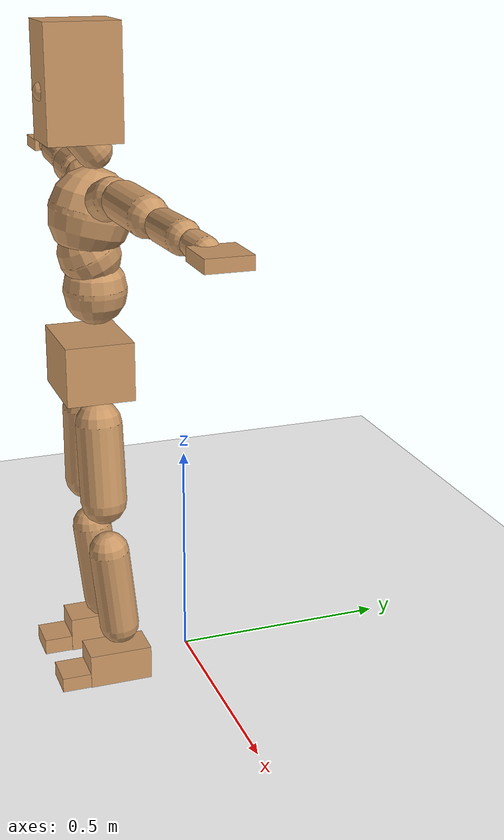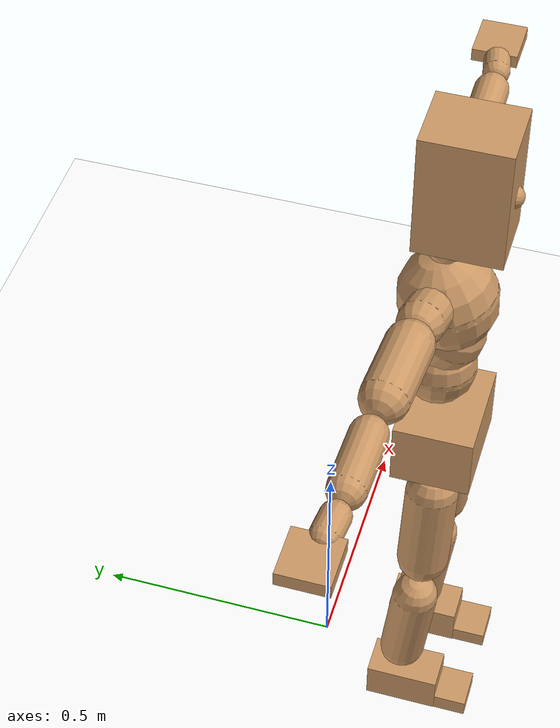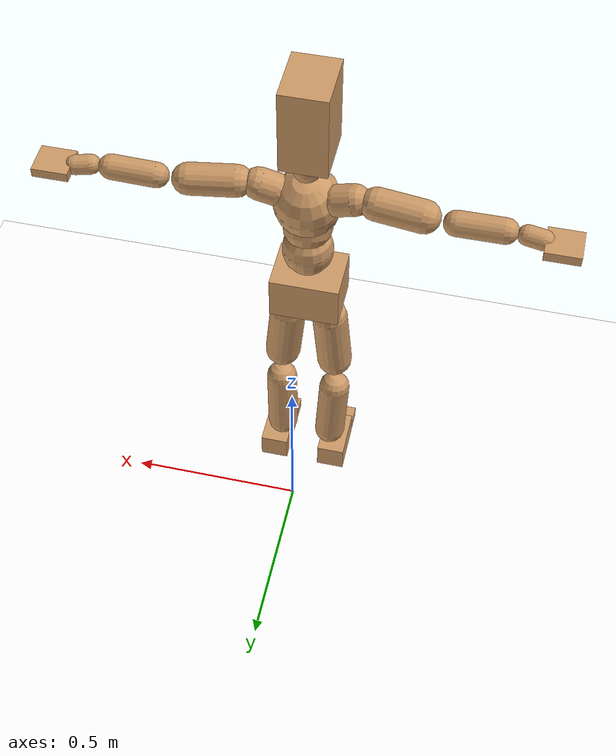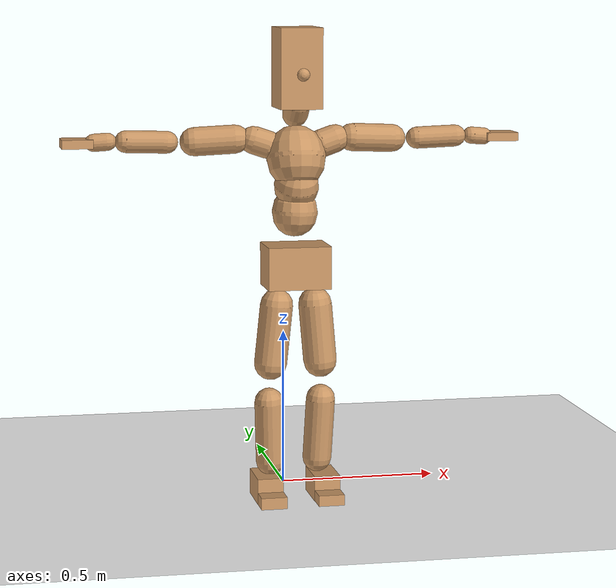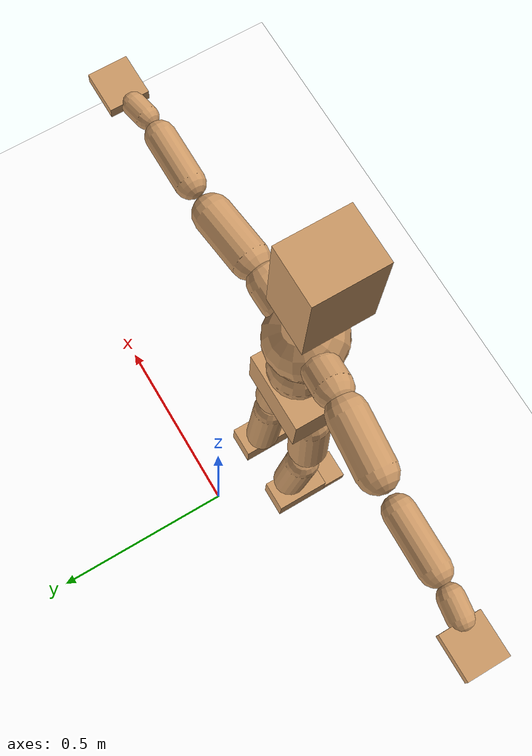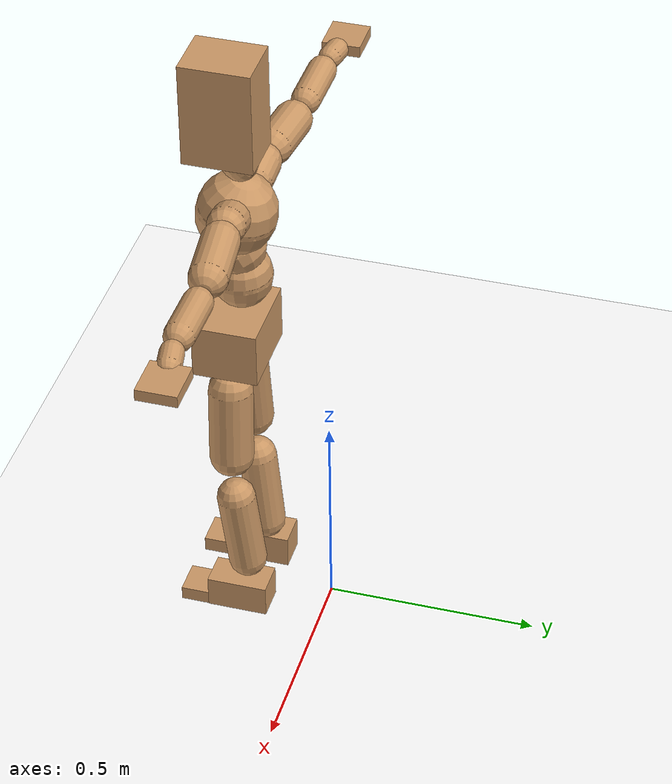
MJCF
<mujoco model="humanoid">
  <option integrator="implicitfast" />

  <visual>
    <global offwidth="1280" offheight="960" />
    <headlight active="1" ambient="0.34 0.34 0.34" diffuse="0.5 0.5 0.5" />
  </visual>

  <default>
    <joint damping="2" stiffness="2" armature="0.01" limited="true" solimplimit="0 .99 .01" />
    <geom condim="1" friction="0.7 0.005 0.0001" solimp=".99 .99 .003" solref="0.015 1" margin="0.001" rgba="0.8 0.6 .4 1" />
    <default class="smplcontact">
      <geom condim="3" friction="1. 0.005 0.0001" solref="0.015 1" solimp="0.98 0.98 0.001" priority="1" />
    </default>
    <default class="stiff_medium">
      <joint stiffness="10" />
    </default>
    <default class="stiff_medium_higher">
      <joint stiffness="50" />
    </default>
    <default class="stiff_high">
      <joint stiffness="100" />
    </default>
  </default>

  <asset>
    <texture type="skybox" builtin="gradient" rgb1="0.99 0.99 0.99" rgb2="0.608 0.828 0.892" width="100" />
    <texture builtin="flat" height="1278" mark="cross" markrgb="1 1 1" name="texgeom" random="0.01" rgb1="0.8 0.6 0.4" rgb2="0.8 0.6 0.4" type="cube" width="127" />
    <texture name="texplane" type="2d" builtin="checker" markrgb="1 1 1" rgb1="0.756 0.772 0.76" rgb2="0.6 0.6 0.6" width="100" height="100" />
    <material name="MatPlane" reflectance="0.5" texture="texplane" texrepeat="1 1" texuniform="true" />
    <material name="geom" texture="texgeom" texuniform="true" />
  </asset>

  <worldbody>
    <light name="tracking_light" pos="0 0 7" dir="0 0 -1" directional="true" cutoff="100" exponent="1" diffuse="1 1 1" specular="0.1 0.1 0.1" mode="trackcom" />
    <camera name="back" pos="0 3 2.4" xyaxes="-1 0 0 0 -1 2" mode="trackcom" />
    <camera name="side" pos="-3 0 2.4" xyaxes="0 -1 0 1 0 2" mode="trackcom" />
    <camera name="front_side" pos="-2.8 -2.8 0.8" xyaxes="0.5 -0.5 0 0.1 0.1 1" mode="trackcom" />
    <geom condim="3" name="floor" pos="0 0 0" rgba="1 1 1 1" size="100 100 .2" type="plane" material="MatPlane" />
    <body name="Pelvis" pos="-0.0018 -0.2233 0.760639" euler="90 0 0">
      <site name="Pelvis" size="0.01" />
      <freejoint name="Pelvis" />
      <geom type="box" pos="-0.0000 -0.0121 -0.0055" size="0.0988825 0.066785 0.076775" quat="1.0000 0.0000 0.0000 0.0000" density="3165.830099" name="Pelvis" />
      <body name="L_Hip" pos="0.056295 -0.074034 -0.005508">
        <joint name="L_Hip_x" type="hinge" pos="0 0 0" axis="1 0 0" stiffness="4.817767000000001" range="-160.0 22.92" class="stiff_medium" damping="6.526350127260392" armature="0.003929275024770395"/>
        <joint name="L_Hip_y" type="hinge" pos="0 0 0" axis="0 1 0" stiffness="4.823830500000001" range="-70.0 70.0" class="stiff_medium" damping="4.476429341145728" armature="0.004154047213365058"/>
        <joint name="L_Hip_z" type="hinge" pos="0 0 0" axis="0 0 1" stiffness="4.8226151999999995" range="-28.65 90.0" class="stiff_medium" damping="4.352902981191448" armature="0.003928939709654918"/>
        <geom type="capsule" density="2040.816327" fromto="0.005589 -0.06075 -0.000729 0.022194 -0.243162 -0.002916" size="0.052275" name="L_Hip" />
        <body name="L_Knee" pos="0.027783 -0.303912 -0.003645">
          <joint name="L_Knee_x" type="hinge" pos="0 0 0" axis="1 0 0" range="-5.16 171.89" damping="3.506740823764987" armature="0.003966881288896686" stiffness="0.9687420600000001"/>
          <joint name="L_Knee_y" type="hinge" pos="0 0 0" axis="0 1 0" range="-4.58 6.88" damping="3.5995628088408504" armature="0.004193431709823433" stiffness="0.9655615400000002"/>
          <joint name="L_Knee_z" type="hinge" pos="0 0 0" axis="0 0 1" range="-6.88 4.58" damping="3.509638058258847" armature="0.0039652340166350065" stiffness="0.97074656"/>
          <geom type="capsule" density="1234.567901" fromto="-0.002187 -0.064476 -0.007047 -0.008829 -0.257904 -0.02835" size="0.045985" name="L_Knee" />
          <body name="L_Ankle" pos="-0.011016 -0.32238 -0.035397">
            <joint name="L_Ankle_x" type="hinge" pos="0 0 0" axis="1 0 0" range="-45.84 45.84" class="stiff_medium" damping="2.732309675825669" armature="0.004168845129713078" stiffness="4.974410000000001"/>
            <joint name="L_Ankle_y" type="hinge" pos="0 0 0" axis="0 1 0" range="-74.48 22.92" class="stiff_medium" damping="1.367788773395543" armature="0.004178823057802911" stiffness="4.974410000000001"/>
            <joint name="L_Ankle_z" type="hinge" pos="0 0 0" axis="0 0 1" range="-4.58 4.58" class="stiff_medium" damping="2.756875289322982" armature="0.00424414450986799" stiffness="4.974410000000001"/>
            <geom type="box" pos="0.018873 -0.019359 0.019602" size="0.041055 0.03944 0.07225" quat="1.0000 0.0000 0.0000 0.0000" density="449.071558" name="L_Ankle" class="smplcontact" />
            <body name="L_Toe" pos="0.021384 -0.045198 0.096633">
              <joint name="L_Toe_x" type="hinge" pos="0 0 0" axis="1 0 0" range="-91.67 22.92" armature="0.004282020478665481" damping="0.9230498467423816" stiffness="0.994882"/>
              <joint name="L_Toe_y" type="hinge" pos="0 0 0" axis="0 1 0" range="-4.58 4.58" armature="0.004327820109783187" damping="0.9279730951338316" stiffness="0.994882"/>
              <joint name="L_Toe_z" type="hinge" pos="0 0 0" axis="0 0 1" range="-4.58 4.58" armature="0.004420424498747949" damping="0.9378486835479759" stiffness="0.994882"/>
              <geom type="box" pos="-0.00243 0.004455 0.020088" size="0.04063 0.017 0.04216" quat="1.0000 0.0000 0.0000 0.0000" density="423.206892" name="L_Toe" class="smplcontact" />
            </body>
          </body>
        </body>
      </body>
      <body name="R_Hip" pos="-0.054837 -0.073305 -0.003483">
        <joint name="R_Hip_x" type="hinge" pos="0 0 0" axis="1 0 0" stiffness="4.817767000000001" range="-160.0 22.92" class="stiff_medium" damping="6.526350127260392" armature="0.003929275024770395"/>
        <joint name="R_Hip_y" type="hinge" pos="0 0 0" axis="0 1 0" stiffness="4.823830500000001" range="-70.0 70.0" class="stiff_medium" damping="4.476429341145728" armature="0.004154047213365058"/>
        <joint name="R_Hip_z" type="hinge" pos="0 0 0" axis="0 0 1" stiffness="4.8226151999999995" range="-90.0 28.65" class="stiff_medium" damping="4.352902981191448" armature="0.003928939709654918"/>
        <geom type="capsule" density="2040.816327" fromto="-0.006237 -0.061965 -0.001458 -0.024786 -0.247941 -0.005751" size="0.05151" name="R_Hip" />
        <body name="R_Knee" pos="-0.031023 -0.309906 -0.007209">
          <joint name="R_Knee_x" type="hinge" pos="0 0 0" axis="1 0 0" range="-5.16 171.89" damping="3.506740823764987" armature="0.003966881288896686" stiffness="0.9687420600000001"/>
          <joint name="R_Knee_y" type="hinge" pos="0 0 0" axis="0 1 0" range="-6.88 4.58" damping="3.5995628088408504" armature="0.004193431709823433" stiffness="0.9655615400000002"/>
          <joint name="R_Knee_z" type="hinge" pos="0 0 0" axis="0 0 1" range="-4.58 6.88" damping="3.509638058258847" armature="0.0039652340166350065" stiffness="0.97074656"/>
          <geom type="capsule" density="1234.567901" fromto="0.002592 -0.064557 -0.006885 0.010206 -0.258147 -0.027378" size="0.045985" name="R_Knee" />
          <body name="R_Ankle" pos="0.012798 -0.322704 -0.034263">
            <joint name="R_Ankle_x" type="hinge" pos="0 0 0" axis="1 0 0" range="-45.84 45.84" class="stiff_medium" damping="2.732309675825669" armature="0.004168845129713078" stiffness="4.974410000000001"/>
            <joint name="R_Ankle_y" type="hinge" pos="0 0 0" axis="0 1 0" range="-22.92 74.48" class="stiff_medium" damping="1.367788773395543" armature="0.004178823057802911" stiffness="4.974410000000001"/>
            <joint name="R_Ankle_z" type="hinge" pos="0 0 0" axis="0 0 1" range="-4.58 4.58" class="stiff_medium" damping="2.756875289322982" armature="0.00424414450986799" stiffness="4.974410000000001"/>
            <geom type="box" pos="-0.017172 -0.014094 0.020736" size="0.041055 0.04063 0.073525" quat="1.0000 0.0000 0.0000 0.0000" density="434.700981" name="R_Ankle" class="smplcontact" />
            <body name="R_Toe" pos="-0.020574 -0.038961 0.099873">
              <joint name="R_Toe_x" type="hinge" pos="0 0 0" axis="1 0 0" range="-91.67 22.92" armature="0.004282020478665481" damping="0.9230498467423816" stiffness="0.994882"/>
              <joint name="R_Toe_y" type="hinge" pos="0 0 0" axis="0 1 0" range="-4.58 4.58" armature="0.004327820109783187" damping="0.9279730951338316" stiffness="0.994882"/>
              <joint name="R_Toe_z" type="hinge" pos="0 0 0" axis="0 0 1" range="-4.58 4.58" armature="0.004420424498747949" damping="0.9378486835479759" stiffness="0.994882"/>
              <geom type="box" pos="0.003402 0.003645 0.018387" size="0.040715 0.01836 0.041905" quat="1.0000 0.0000 0.0000 0.0000" density="407.384095" name="R_Toe" class="smplcontact" />
            </body>
          </body>
        </body>
      </body>
      <body name="Torso" pos="-0.0021875 0.095375 -0.0233625">
        <joint name="Torso_x" type="hinge" pos="0 0 0" axis="1 0 0" range="-25.78 57.3" class="stiff_medium" damping="11.243097655456936" armature="0.007361875466574785" stiffness="7.631343125"/>
        <joint name="Torso_y" type="hinge" pos="0 0 0" axis="0 1 0" range="-57.3 57.3" class="stiff_high" damping="11.63440796531502" armature="0.0043005566621356975" stiffness="78.68716734693876"/>
        <joint name="Torso_z" type="hinge" pos="0 0 0" axis="0 0 1" range="-34.38 34.38" class="stiff_high" damping="13.80035631909375" armature="0.006303134692229226" stiffness="75.53774583333333"/>
        <geom type="capsule" density="2040.816327" fromto="0.0021875 0.0532 0.0004375 0.002625 0.0650125 0.000525" size="0.0711325" name="Torso" />
        <body name="Spine" pos="0.0048125 0.1183 0.0009625">
          <joint name="Spine_x" type="hinge" pos="0 0 0" axis="1 0 0" stiffness="7.817059199999999" range="-25.78 57.3" class="stiff_medium" damping="12.052764174857192" armature="0.008259379080091965"/>
          <joint name="Spine_y" type="hinge" pos="0 0 0" axis="0 1 0" stiffness="8.042504375" range="-57.3 57.3" class="stiff_high" damping="4.695226378456563" armature="0.004282938054229053"/>
          <joint name="Spine_z" type="hinge" pos="0 0 0" axis="0 0 1" stiffness="16.252843913043474" range="-34.38 34.38" class="stiff_high" damping="8.418849802461436" armature="0.006056805980781451"/>
          <geom type="capsule" density="2040.816327" fromto="0.0006125 0.020825 0.009975 0.0007 0.0254625 0.01225" size="0.0698375" name="Spine" />
          <body name="Chest" pos="0.0013125 0.0462875 0.022225">
            <joint name="Chest_x" type="hinge" pos="0 0 0" axis="1 0 0" stiffness="8.27730568181818" range="-25.78 57.3" class="stiff_medium" damping="12.761629387126126" armature="0.008744616015281153"/>
            <joint name="Chest_y" type="hinge" pos="0 0 0" axis="0 1 0" stiffness="7.608817241379311" range="-57.3 57.3" class="stiff_high" damping="4.553564774218546" armature="0.004258002487282194"/>
            <joint name="Chest_z" type="hinge" pos="0 0 0" axis="0 0 1" stiffness="16.765671555555556" range="-34.38 34.38" class="stiff_high" damping="8.420532453685578" armature="0.0058738879495369555"/>
            <geom type="capsule" density="2040.816327" fromto="-0.0007875 0.059675 -0.0151375 -0.000875 0.0728875 -0.01855" size="0.092685" name="Chest" />
            <body name="Neck" pos="-0.00245 0.187163 -0.0375375">
              <joint name="Neck_x" type="hinge" pos="0 0 0" axis="1 0 0" range="-28.65 57.3" class="stiff_medium_higher" damping="12.763967752838504" armature="0.013209363218634054" stiffness="61.667951020408175"/>
              <joint name="Neck_y" type="hinge" pos="0 0 0" axis="0 1 0" range="-40.11 40.11" class="stiff_medium_higher" damping="12.935323318619215" armature="0.013517555516789511" stiffness="61.890845999999996"/>
              <joint name="Neck_z" type="hinge" pos="0 0 0" axis="0 0 1" range="-40.11 40.11" class="stiff_medium_higher" damping="12.868591438562323" armature="0.013223484530510997" stiffness="62.61611500000001"/>
              <geom type="capsule" density="1000" fromto="0.000875 0.011375 0.0090125 0.0035875 0.0455 0.0359625" size="0.04033" name="Neck" />
              <body name="Head" pos="0.00533 0.066625 0.0525825">
                <joint name="Head_x" type="hinge" pos="0 0 0" axis="1 0 0" range="-28.65 57.3" class="stiff_medium_higher" damping="2.6355677372022006" armature="0.013637639842064989" stiffness="63.6677"/>
                <joint name="Head_y" type="hinge" pos="0 0 0" axis="0 1 0" range="-40.11 40.11" class="stiff_medium_higher" damping="2.698449591760484" armature="0.014296162338344876" stiffness="63.6677"/>
                <joint name="Head_z" type="hinge" pos="0 0 0" axis="0 0 1" range="-40.11 40.11" class="stiff_medium_higher" damping="2.6324151610292597" armature="0.01360503359634615" stiffness="63.6677"/>
                <geom type="box" pos="-0.004305 0.08979 -0.01189" size="0.065145 0.124055 0.0817" quat="1.0000 0.0000 0.0000 0.0000" density="1018.069894" name="Head" />
                <geom type="capsule" name="nose" size="0.0215 0.01075" pos="0 0.07175 0.05125" quat="1 0 0 0" mass="0" contype="0" conaffinity="0" />
              </body>
            </body>
            <body name="L_Thorax" pos="0.06501 0.100402 -0.0281325">
              <joint name="L_Thorax_x" type="hinge" pos="0 0 0" axis="1 0 0" range="-10.89 4.58" class="stiff_medium_higher" damping="9.164797853879262" armature="0.0042203635318987" stiffness="24.877454"/>
              <joint name="L_Thorax_y" type="hinge" pos="0 0 0" axis="0 1 0" range="-28.65 17.19" class="stiff_medium_higher" damping="9.044357836649468" armature="0.004113155618009638" stiffness="24.859383"/>
              <joint name="L_Thorax_z" type="hinge" pos="0 0 0" axis="0 0 1" range="-31.51 40.11" class="stiff_medium_higher" damping="9.044313744236854" armature="0.004113058763408719" stiffness="24.859726"/>
              <geom type="capsule" density="1000" fromto="0.015015 0.0050325 -0.001485 0.06006 0.02013 -0.0058575" size="0.044285" name="L_Thorax" />
              <body name="L_Shoulder" pos="0.075075 0.0251625 -0.0073425">
                <joint name="L_Shoulder_x" type="hinge" pos="0 0 0" axis="1 0 0" range="-97.4 97.4" class="stiff_medium" damping="2.7636058020486076" armature="0.00426239754648781" stiffness="4.977321999999999"/>
                <joint name="L_Shoulder_y" type="hinge" pos="0 0 0" axis="0 1 0" range="-108.86 80.21" class="stiff_medium" damping="2.715029037204121" armature="0.004116958204592517" stiffness="4.9735902"/>
                <joint name="L_Shoulder_z" type="hinge" pos="0 0 0" axis="0 0 1" range="-97.4 85.94" class="stiff_medium" damping="2.7149574357415736" armature="0.004116832608328104" stiffness="4.973479599999999"/>
                <geom type="capsule" density="1000" fromto="0.0428175 -0.002145 -0.0045375 0.171352 -0.008415 -0.01815" size="0.043945" name="L_Shoulder" />
                <body name="L_Elbow" pos="0.21417 -0.01056 -0.0226875">
                  <joint name="L_Elbow_x" type="hinge" pos="0 0 0" axis="1 0 0" range="-17.19 4.58" damping="2.3238083347602254" armature="0.004329561831362212" stiffness="0.99780724"/>
                  <joint name="L_Elbow_y" type="hinge" pos="0 0 0" axis="0 1 0" range="-180.0 17.19" damping="2.2711240929914873" armature="0.004135494774776515" stiffness="0.9978017000000001"/>
                  <joint name="L_Elbow_z" type="hinge" pos="0 0 0" axis="0 0 1" range="-100.84 4.58" damping="2.2710354350055653" armature="0.004134835914936555" stiffness="0.9978827800000001"/>
                  <geom type="capsule" density="1000" fromto="0.041085 0.001485 -0.000165 0.164505 0.00594 -0.0007425" size="0.034425" name="L_Elbow" />
                  <body name="L_Wrist" pos="0.20559 0.007425 -0.00099">
                    <joint name="L_Wrist_x" type="hinge" pos="0 0 0" axis="1 0 0" range="-180.0 22.92" armature="0.0043493005565648805" damping="0.9363463368802926" stiffness="1.0079143199999998"/>
                    <joint name="L_Wrist_y" type="hinge" pos="0 0 0" axis="0 1 0" range="-17.19 17.19" armature="0.0041985539364091775" damping="0.9196205407735943" stiffness="1.00713478"/>
                    <joint name="L_Wrist_z" type="hinge" pos="0 0 0" axis="0 0 1" range="-22.92 22.92" armature="0.004190142883564414" damping="0.9188134313863244" stiffness="1.00738584"/>
                    <geom type="capsule" density="1000" fromto="0.01386 -0.00132 -0.002475 0.05544 -0.0053625 -0.0099" size="0.02703" name="L_Wrist" class="smplcontact" />
                    <body name="L_Hand" pos="0.0693 -0.006765 -0.0122925">
                      <joint name="L_Hand_x" type="hinge" pos="0 0 0" axis="1 0 0" range="-17.19 17.19" armature="0.004425849440136959" damping="0.94707336492876" stiffness="1.013306"/>
                      <joint name="L_Hand_y" type="hinge" pos="0 0 0" axis="0 1 0" range="-51.57 51.57" armature="0.0043015600137252495" damping="0.9336805204423918" stiffness="1.013306"/>
                      <joint name="L_Hand_z" type="hinge" pos="0 0 0" axis="0 0 1" range="-91.67 91.67" armature="0.004268428968938718" damping="0.930077919832464" stiffness="1.013306"/>
                      <geom type="box" pos="0.0406725 0.000825 -0.004785" size="0.049725 0.01343 0.04573" quat="1.0000 0.0000 0.0000 0.0000" density="400.552564" name="L_Hand" class="smplcontact" />
                    </body>
                  </body>
                </body>
              </body>
            </body>
            <body name="R_Thorax" pos="-0.067485 0.09801 -0.031845">
              <joint name="R_Thorax_x" type="hinge" pos="0 0 0" axis="1 0 0" range="-10.89 4.58" class="stiff_medium_higher" damping="9.164797853879262" armature="0.0042203635318987" stiffness="24.877454"/>
              <joint name="R_Thorax_y" type="hinge" pos="0 0 0" axis="0 1 0" range="-17.19 28.65" class="stiff_medium_higher" damping="9.044357836649468" armature="0.004113155618009638" stiffness="24.859383"/>
              <joint name="R_Thorax_z" type="hinge" pos="0 0 0" axis="0 0 1" range="-40.11 31.51" class="stiff_medium_higher" damping="9.044313744236854" armature="0.004113058763408719" stiffness="24.859726"/>
              <geom type="capsule" density="1000" fromto="-0.01584 0.0053625 -0.001485 -0.06336 0.02145 -0.0060225" size="0.043435" name="R_Thorax" />
              <body name="R_Shoulder" pos="-0.0792 0.026895 -0.0075075">
                <joint name="R_Shoulder_x" type="hinge" pos="0 0 0" axis="1 0 0" range="-97.4 97.4" class="stiff_medium" damping="2.7636058020486076" armature="0.00426239754648781" stiffness="4.977321999999999"/>
                <joint name="R_Shoulder_y" type="hinge" pos="0 0 0" axis="0 1 0" range="-80.21 108.86" class="stiff_medium" damping="2.715029037204121" armature="0.004116958204592517" stiffness="4.9735902"/>
                <joint name="R_Shoulder_z" type="hinge" pos="0 0 0" axis="0 0 1" range="-85.94 97.4" class="stiff_medium" damping="2.7149574357415736" armature="0.004116832608328104" stiffness="4.973479599999999"/>
                <geom type="capsule" density="1000" fromto="-0.0418275 -0.0022275 -0.0035475 -0.167475 -0.0088275 -0.0141075" size="0.045135" name="R_Shoulder" />
                <body name="R_Elbow" pos="-0.209302 -0.0109725 -0.017655">
                  <joint name="R_Elbow_x" type="hinge" pos="0 0 0" axis="1 0 0" range="-17.19 4.58" damping="2.3238083347602254" armature="0.004329561831362212" stiffness="0.99780724"/>
                  <joint name="R_Elbow_y" type="hinge" pos="0 0 0" axis="0 1 0" range="-17.19 180.0" damping="2.2711240929914873" armature="0.004135494774776515" stiffness="0.9978017000000001"/>
                  <joint name="R_Elbow_z" type="hinge" pos="0 0 0" axis="0 0 1" range="-4.58 100.84" damping="2.2710354350055653" armature="0.004134835914936555" stiffness="0.9978827800000001"/>
                  <geom type="capsule" density="1000" fromto="-0.0421575 0.00132 -0.0009075 -0.168465 0.005115 -0.00363" size="0.03468" name="R_Elbow" />
                  <body name="R_Wrist" pos="-0.210623 0.006435 -0.00462">
                    <joint name="R_Wrist_x" type="hinge" pos="0 0 0" axis="1 0 0" range="-180.0 22.92" armature="0.0043493005565648805" damping="0.9363463368802926" stiffness="1.0079143199999998"/>
                    <joint name="R_Wrist_y" type="hinge" pos="0 0 0" axis="0 1 0" range="-17.19 17.19" armature="0.0041985539364091775" damping="0.9196205407735943" stiffness="1.00713478"/>
                    <joint name="R_Wrist_z" type="hinge" pos="0 0 0" axis="0 0 1" range="-22.92 22.92" armature="0.004190142883564414" damping="0.9188134313863244" stiffness="1.00738584"/>
                    <geom type="capsule" density="1000" fromto="-0.0139425 -0.00099 -0.0017325 -0.0558525 -0.0040425 -0.0068475" size="0.02771" name="R_Wrist" class="smplcontact" />
                    <body name="R_Hand" pos="-0.069795 -0.0050325 -0.0084975">
                      <joint name="R_Hand_x" type="hinge" pos="0 0 0" axis="1 0 0" range="-17.19 17.19" armature="0.004425849440136959" damping="0.94707336492876" stiffness="1.013306"/>
                      <joint name="R_Hand_y" type="hinge" pos="0 0 0" axis="0 1 0" range="-51.57 51.57" armature="0.0043015600137252495" damping="0.9336805204423918" stiffness="1.013306"/>
                      <joint name="R_Hand_z" type="hinge" pos="0 0 0" axis="0 0 1" range="-91.67 91.67" armature="0.004268428968938718" damping="0.930077919832464" stiffness="1.013306"/>
                      <geom type="box" pos="-0.038115 -0.0007425 -0.0065175" size="0.048365 0.01394 0.04641" quat="1.0000 0.0000 0.0000 0.0000" density="403.679611" name="R_Hand" class="smplcontact" />
                    </body>
                  </body>
                </body>
              </body>
            </body>
          </body>
        </body>
      </body>
    </body>
  </worldbody>
  <actuator>
    <general name="L_Hip_x" joint="L_Hip_x" biastype="affine" gainprm="138.4289300915965" biasprm="-103.7384525309209 -86.719806 -0.8701800169680524" ctrllimited="true" ctrlrange="-1 1" forcerange="-173.439612 173.439612" />
    <general name="L_Hip_y" joint="L_Hip_y" biastype="affine" gainprm="106.08157322673665" biasprm="0.0 -86.82894900000001 -0.8952858682291456" ctrllimited="true" ctrlrange="-1 1" forcerange="-173.65789800000002 173.65789800000002" />
    <general name="L_Hip_z" joint="L_Hip_z" biastype="affine" gainprm="89.88148315783262" biasprm="46.474749192861616 -86.8070736 -0.8705805962382897" ctrllimited="true" ctrlrange="-1 1" forcerange="-173.6141472 173.6141472" />
    <general name="L_Knee_x" joint="L_Knee_x" biastype="affine" gainprm="134.70817995892185" biasprm="126.85622617650967 -87.1867854 -0.8766852059412468" ctrllimited="true" ctrlrange="-1 1" forcerange="-174.3735708 174.3735708" />
    <general name="L_Knee_y" joint="L_Knee_y" biastype="affine" gainprm="8.690693981470409" biasprm="1.7442055983753875 -86.90053860000002 -0.8998907022102126" ctrllimited="true" ctrlrange="-1 1" forcerange="-173.80107720000004 173.80107720000004" />
    <general name="L_Knee_z" joint="L_Knee_z" biastype="affine" gainprm="8.73736259889256" biasprm="-1.753571900301299 -87.3671904 -0.8774095145647117" ctrllimited="true" ctrlrange="-1 1" forcerange="-174.7343808 174.7343808" />
    <general name="L_Ankle_x" joint="L_Ankle_x" biastype="affine" gainprm="35.81839023817474" biasprm="0.0 -44.769690000000004 -0.9107698919418896" ctrllimited="true" ctrlrange="-1 1" forcerange="-89.53938000000001 89.53938000000001" />
    <general name="L_Ankle_y" joint="L_Ankle_y" biastype="affine" gainprm="38.05313273558268" biasprm="-20.143937616495307 -44.769690000000004 -0.9118591822636953" ctrllimited="true" ctrlrange="-1 1" forcerange="-89.53938000000001 89.53938000000001" />
    <general name="L_Ankle_z" joint="L_Ankle_z" biastype="affine" gainprm="3.578713509835085" biasprm="0.0 -44.769690000000004 -0.9189584297743273" ctrllimited="true" ctrlrange="-1 1" forcerange="-89.53938000000001 89.53938000000001" />
    <general name="L_Toe_x" joint="L_Toe_x" biastype="affine" gainprm="35.815264724192346" biasprm="-21.48790862892245 -35.815752 -0.36921993869695263" ctrllimited="true" ctrlrange="-1 1" forcerange="-71.631504 71.631504" />
    <general name="L_Toe_y" joint="L_Toe_y" biastype="affine" gainprm="2.8629708078680682" biasprm="0.0 -35.815752 -0.37118923805353266" ctrllimited="true" ctrlrange="-1 1" forcerange="-71.631504 71.631504" />
    <general name="L_Toe_z" joint="L_Toe_z" biastype="affine" gainprm="2.8629708078680682" biasprm="0.0 -35.815752 -0.3751394734191904" ctrllimited="true" ctrlrange="-1 1" forcerange="-71.631504 71.631504" />
    <general name="R_Hip_x" joint="R_Hip_x" biastype="affine" gainprm="138.4289300915965" biasprm="-103.7384525309209 -86.719806 -0.8701800169680524" ctrllimited="true" ctrlrange="-1 1" forcerange="-173.439612 173.439612" />
    <general name="R_Hip_y" joint="R_Hip_y" biastype="affine" gainprm="106.08157322673665" biasprm="0.0 -86.82894900000001 -0.8952858682291456" ctrllimited="true" ctrlrange="-1 1" forcerange="-173.65789800000002 173.65789800000002" />
    <general name="R_Hip_z" joint="R_Hip_z" biastype="affine" gainprm="89.88148315783262" biasprm="-46.474749192861616 -86.8070736 -0.8705805962382897" ctrllimited="true" ctrlrange="-1 1" forcerange="-173.6141472 173.6141472" />
    <general name="R_Knee_x" joint="R_Knee_x" biastype="affine" gainprm="134.70817995892185" biasprm="126.85622617650967 -87.1867854 -0.8766852059412468" ctrllimited="true" ctrlrange="-1 1" forcerange="-174.3735708 174.3735708" />
    <general name="R_Knee_y" joint="R_Knee_y" biastype="affine" gainprm="8.690693981470409" biasprm="-1.7442055983753875 -86.90053860000002 -0.8998907022102126" ctrllimited="true" ctrlrange="-1 1" forcerange="-173.80107720000004 173.80107720000004" />
    <general name="R_Knee_z" joint="R_Knee_z" biastype="affine" gainprm="8.73736259889256" biasprm="1.753571900301299 -87.3671904 -0.8774095145647117" ctrllimited="true" ctrlrange="-1 1" forcerange="-174.7343808 174.7343808" />
    <general name="R_Ankle_x" joint="R_Ankle_x" biastype="affine" gainprm="35.81839023817474" biasprm="0.0 -44.769690000000004 -0.9107698919418896" ctrllimited="true" ctrlrange="-1 1" forcerange="-89.53938000000001 89.53938000000001" />
    <general name="R_Ankle_y" joint="R_Ankle_y" biastype="affine" gainprm="38.05313273558268" biasprm="20.143937616495307 -44.769690000000004 -0.9118591822636953" ctrllimited="true" ctrlrange="-1 1" forcerange="-89.53938000000001 89.53938000000001" />
    <general name="R_Ankle_z" joint="R_Ankle_z" biastype="affine" gainprm="3.578713509835085" biasprm="0.0 -44.769690000000004 -0.9189584297743273" ctrllimited="true" ctrlrange="-1 1" forcerange="-89.53938000000001 89.53938000000001" />
    <general name="R_Toe_x" joint="R_Toe_x" biastype="affine" gainprm="35.815264724192346" biasprm="-21.48790862892245 -35.815752 -0.36921993869695263" ctrllimited="true" ctrlrange="-1 1" forcerange="-71.631504 71.631504" />
    <general name="R_Toe_y" joint="R_Toe_y" biastype="affine" gainprm="2.8629708078680682" biasprm="0.0 -35.815752 -0.37118923805353266" ctrllimited="true" ctrlrange="-1 1" forcerange="-71.631504 71.631504" />
    <general name="R_Toe_z" joint="R_Toe_z" biastype="affine" gainprm="2.8629708078680682" biasprm="0.0 -35.815752 -0.3751394734191904" ctrllimited="true" ctrlrange="-1 1" forcerange="-71.631504 71.631504" />
    <general name="Torso_x" joint="Torso_x" biastype="affine" gainprm="132.78716000648592" biasprm="50.378566242229596 -183.152235 -2.998159374788516" ctrllimited="true" ctrlrange="-1 1" forcerange="-274.72835249999997 274.72835249999997" />
    <general name="Torso_y" joint="Torso_y" biastype="affine" gainprm="188.86311252786518" biasprm="0.0 -188.84920163265303 -2.3268815930630042" ctrllimited="true" ctrlrange="-1 1" forcerange="-283.27380244897955 283.27380244897955" />
    <general name="Torso_z" joint="Torso_z" biastype="affine" gainprm="108.78236647041122" biasprm="0.0 -181.29058999999998 -2.76007126381875" ctrllimited="true" ctrlrange="-1 1" forcerange="-271.935885 271.935885" />
    <general name="Spine_x" joint="Spine_x" biastype="affine" gainprm="136.01866326388944" biasprm="51.60457710733984 -187.60942079999998 -3.2140704466285843" ctrllimited="true" ctrlrange="-1 1" forcerange="-281.4141312 281.4141312" />
    <general name="Spine_y" joint="Spine_y" biastype="affine" gainprm="193.0343231297632" biasprm="0.0 -193.020105 -2.3476131892282814" ctrllimited="true" ctrlrange="-1 1" forcerange="-289.53015750000003 289.53015750000003" />
    <general name="Spine_z" joint="Spine_z" biastype="affine" gainprm="117.02909606516837" biasprm="0.0 -195.0341269565217 -2.8062832674871454" ctrllimited="true" ctrlrange="-1 1" forcerange="-292.55119043478254 292.55119043478254" />
    <general name="Chest_x" joint="Chest_x" biastype="affine" gainprm="144.02705998024246" biasprm="54.64290961214782 -198.65533636363634 -3.4031011699003004" ctrllimited="true" ctrlrange="-1 1" forcerange="-297.98300454545455 297.98300454545455" />
    <general name="Chest_y" joint="Chest_y" biastype="affine" gainprm="182.62506521890793" biasprm="0.0 -182.61161379310346 -2.276782387109273" ctrllimited="true" ctrlrange="-1 1" forcerange="-273.9174206896552 273.9174206896552" />
    <general name="Chest_z" joint="Chest_z" biastype="affine" gainprm="120.72172707556375" biasprm="0.0 -201.18805866666665 -2.8068441512285256" ctrllimited="true" ctrlrange="-1 1" forcerange="-301.782088 301.782088" />
    <general name="Neck_x" joint="Neck_x" biastype="affine" gainprm="33.30314652648695" biasprm="11.101048842162315 -44.40092473469389 -1.0211174202270803" ctrllimited="true" ctrlrange="-1 1" forcerange="-88.80184946938778 88.80184946938778" />
    <general name="Neck_y" joint="Neck_y" biastype="affine" gainprm="31.195284102821102" biasprm="0.0 -44.56140912 -1.0348258654895373" ctrllimited="true" ctrlrange="-1 1" forcerange="-89.12281824 89.12281824" />
    <general name="Neck_z" joint="Neck_z" biastype="affine" gainprm="31.560846604680734" biasprm="0.0 -45.0836028 -1.029487315084986" ctrllimited="true" ctrlrange="-1 1" forcerange="-90.1672056 90.1672056" />
    <general name="Head_x" joint="Head_x" biastype="affine" gainprm="22.92206034652389" biasprm="7.64068678217463 -30.560496 -1.0542270948808803" ctrllimited="true" ctrlrange="-1 1" forcerange="-61.120992 61.120992" />
    <general name="Head_y" joint="Head_y" biastype="affine" gainprm="21.393922990088964" biasprm="0.0 -30.560496 -1.0793798367041936" ctrllimited="true" ctrlrange="-1 1" forcerange="-61.120992 61.120992" />
    <general name="Head_z" joint="Head_z" biastype="affine" gainprm="21.393922990088964" biasprm="0.0 -30.560496 -1.0529660644117038" ctrllimited="true" ctrlrange="-1 1" forcerange="-61.120992 61.120992" />
    <general name="L_Thorax_x" joint="L_Thorax_x" biastype="affine" gainprm="8.060367796384575" biasprm="-3.2877130442913187 -59.7058896 -0.7331838283103411" ctrllimited="true" ctrlrange="-1 1" forcerange="-119.4117792 119.4117792" />
    <general name="L_Thorax_y" joint="L_Thorax_y" biastype="affine" gainprm="23.86676560970372" biasprm="-5.96669140242593 -59.662519200000006 -0.7235486269319574" ctrllimited="true" ctrlrange="-1 1" forcerange="-119.32503840000001 119.32503840000001" />
    <general name="L_Thorax_z" joint="L_Thorax_z" biastype="affine" gainprm="37.28973249864178" biasprm="4.477683600786363 -59.6633424 -0.7235450995389484" ctrllimited="true" ctrlrange="-1 1" forcerange="-119.3266848 119.3266848" />
    <general name="L_Shoulder_x" joint="L_Shoulder_x" biastype="affine" gainprm="40.6137694820729" biasprm="0.0 -23.891145599999998 -0.736961547212962" ctrllimited="true" ctrlrange="-1 1" forcerange="-47.782291199999996 47.782291199999996" />
    <general name="L_Shoulder_y" joint="L_Shoulder_y" biastype="affine" gainprm="39.38956930253986" biasprm="-5.968747873897324 -23.87323296 -0.7240077432544324" ctrllimited="true" ctrlrange="-1 1" forcerange="-47.74646592 47.74646592" />
    <general name="L_Shoulder_z" joint="L_Shoulder_z" biastype="affine" gainprm="38.19497034984786" biasprm="-2.3874460576483987 -23.872702079999996 -0.7239886495310863" ctrllimited="true" ctrlrange="-1 1" forcerange="-47.74540415999999 47.74540415999999" />
    <general name="L_Elbow_x" joint="L_Elbow_x" biastype="affine" gainprm="6.824250379159654" biasprm="-3.9528616114470956 -35.92106064 -0.37180933356163615" ctrllimited="true" ctrlrange="-1 1" forcerange="-71.84212128 71.84212128" />
    <general name="L_Elbow_y" joint="L_Elbow_y" biastype="affine" gainprm="61.812882905369044" biasprm="-51.03583075116961 -35.920861200000004 -0.363379854878638" ctrllimited="true" ctrlrange="-1 1" forcerange="-71.84172240000001 71.84172240000001" />
    <general name="L_Elbow_z" joint="L_Elbow_z" biastype="affine" gainprm="33.048550244166734" biasprm="-30.176944095081485 -35.92378008 -0.36336566960089045" ctrllimited="true" ctrlrange="-1 1" forcerange="-71.84756016 71.84756016" />
    <general name="L_Wrist_x" joint="L_Wrist_x" biastype="affine" gainprm="10.708954946726955" biasprm="-8.289782392232752 -6.047485919999999 -0.37453853475211707" ctrllimited="true" ctrlrange="-1 1" forcerange="-12.094971839999998 12.094971839999998" />
    <general name="L_Wrist_y" joint="L_Wrist_y" biastype="affine" gainprm="1.812976140511049" biasprm="0.0 -6.042808679999999 -0.36784821630943776" ctrllimited="true" ctrlrange="-1 1" forcerange="-12.085617359999999 12.085617359999999" />
    <general name="L_Wrist_z" joint="L_Wrist_z" biastype="affine" gainprm="2.4179041090656286" biasprm="0.0 -6.04431504 -0.3675253725545298" ctrllimited="true" ctrlrange="-1 1" forcerange="-12.08863008 12.08863008" />
    <general name="L_Hand_x" joint="L_Hand_x" biastype="affine" gainprm="1.8240851547562373" biasprm="0.0 -6.079836 -0.37882934597150403" ctrllimited="true" ctrlrange="-1 1" forcerange="-12.159672 12.159672" />
    <general name="L_Hand_y" joint="L_Hand_y" biastype="affine" gainprm="5.472255464268711" biasprm="0.0 -6.079836 -0.37347220817695675" ctrllimited="true" ctrlrange="-1 1" forcerange="-12.159672 12.159672" />
    <general name="L_Hand_z" joint="L_Hand_z" biastype="affine" gainprm="9.727393027138119" biasprm="0.0 -6.079836 -0.37203116793298563" ctrllimited="true" ctrlrange="-1 1" forcerange="-12.159672 12.159672" />
    <general name="R_Thorax_x" joint="R_Thorax_x" biastype="affine" gainprm="8.060367796384575" biasprm="-3.2877130442913187 -59.7058896 -0.7331838283103411" ctrllimited="true" ctrlrange="-1 1" forcerange="-119.4117792 119.4117792" />
    <general name="R_Thorax_y" joint="R_Thorax_y" biastype="affine" gainprm="23.86676560970372" biasprm="5.966691402425926 -59.662519200000006 -0.7235486269319574" ctrllimited="true" ctrlrange="-1 1" forcerange="-119.32503840000001 119.32503840000001" />
    <general name="R_Thorax_z" joint="R_Thorax_z" biastype="affine" gainprm="37.28973249864178" biasprm="-4.477683600786363 -59.6633424 -0.7235450995389484" ctrllimited="true" ctrlrange="-1 1" forcerange="-119.3266848 119.3266848" />
    <general name="R_Shoulder_x" joint="R_Shoulder_x" biastype="affine" gainprm="40.6137694820729" biasprm="0.0 -23.891145599999998 -0.736961547212962" ctrllimited="true" ctrlrange="-1 1" forcerange="-47.782291199999996 47.782291199999996" />
    <general name="R_Shoulder_y" joint="R_Shoulder_y" biastype="affine" gainprm="39.38956930253986" biasprm="5.968747873897324 -23.87323296 -0.7240077432544324" ctrllimited="true" ctrlrange="-1 1" forcerange="-47.74646592 47.74646592" />
    <general name="R_Shoulder_z" joint="R_Shoulder_z" biastype="affine" gainprm="38.19497034984786" biasprm="2.3874460576483933 -23.872702079999996 -0.7239886495310863" ctrllimited="true" ctrlrange="-1 1" forcerange="-47.74540415999999 47.74540415999999" />
    <general name="R_Elbow_x" joint="R_Elbow_x" biastype="affine" gainprm="6.824250379159654" biasprm="-3.9528616114470956 -35.92106064 -0.37180933356163615" ctrllimited="true" ctrlrange="-1 1" forcerange="-71.84212128 71.84212128" />
    <general name="R_Elbow_y" joint="R_Elbow_y" biastype="affine" gainprm="61.812882905369044" biasprm="51.03583075116961 -35.920861200000004 -0.363379854878638" ctrllimited="true" ctrlrange="-1 1" forcerange="-71.84172240000001 71.84172240000001" />
    <general name="R_Elbow_z" joint="R_Elbow_z" biastype="affine" gainprm="33.048550244166734" biasprm="30.17694409508148 -35.92378008 -0.36336566960089045" ctrllimited="true" ctrlrange="-1 1" forcerange="-71.84756016 71.84756016" />
    <general name="R_Wrist_x" joint="R_Wrist_x" biastype="affine" gainprm="10.708954946726955" biasprm="-8.289782392232752 -6.047485919999999 -0.37453853475211707" ctrllimited="true" ctrlrange="-1 1" forcerange="-12.094971839999998 12.094971839999998" />
    <general name="R_Wrist_y" joint="R_Wrist_y" biastype="affine" gainprm="1.812976140511049" biasprm="0.0 -6.042808679999999 -0.36784821630943776" ctrllimited="true" ctrlrange="-1 1" forcerange="-12.085617359999999 12.085617359999999" />
    <general name="R_Wrist_z" joint="R_Wrist_z" biastype="affine" gainprm="2.4179041090656286" biasprm="0.0 -6.04431504 -0.3675253725545298" ctrllimited="true" ctrlrange="-1 1" forcerange="-12.08863008 12.08863008" />
    <general name="R_Hand_x" joint="R_Hand_x" biastype="affine" gainprm="1.8240851547562373" biasprm="0.0 -6.079836 -0.37882934597150403" ctrllimited="true" ctrlrange="-1 1" forcerange="-12.159672 12.159672" />
    <general name="R_Hand_y" joint="R_Hand_y" biastype="affine" gainprm="5.472255464268711" biasprm="0.0 -6.079836 -0.37347220817695675" ctrllimited="true" ctrlrange="-1 1" forcerange="-12.159672 12.159672" />
    <general name="R_Hand_z" joint="R_Hand_z" biastype="affine" gainprm="9.727393027138119" biasprm="0.0 -6.079836 -0.37203116793298563" ctrllimited="true" ctrlrange="-1 1" forcerange="-12.159672 12.159672" />
  </actuator>
  <contact>
    <exclude body1="Torso" body2="Chest" />
    <exclude body1="Head" body2="Chest" />
    <exclude body1="R_Knee" body2="R_Toe" />
    <exclude body1="R_Knee" body2="L_Ankle" />
    <exclude body1="R_Knee" body2="L_Toe" />
    <exclude body1="L_Knee" body2="L_Toe" />
    <exclude body1="L_Knee" body2="R_Ankle" />
    <exclude body1="L_Knee" body2="R_Toe" />
    <exclude body1="L_Shoulder" body2="Chest" />
    <exclude body1="R_Shoulder" body2="Chest" />
  </contact>
  <sensor>
    <framelinvel name="sensor_Pelvis_framelinvel" objtype="xbody" objname="Pelvis" />
    <framelinvel name="sensor_L_Hip_framelinvel" objtype="xbody" objname="L_Hip" />
    <framelinvel name="sensor_L_Knee_framelinvel" objtype="xbody" objname="L_Knee" />
    <framelinvel name="sensor_L_Ankle_framelinvel" objtype="xbody" objname="L_Ankle" />
    <framelinvel name="sensor_L_Toe_framelinvel" objtype="xbody" objname="L_Toe" />
    <framelinvel name="sensor_R_Hip_framelinvel" objtype="xbody" objname="R_Hip" />
    <framelinvel name="sensor_R_Knee_framelinvel" objtype="xbody" objname="R_Knee" />
    <framelinvel name="sensor_R_Ankle_framelinvel" objtype="xbody" objname="R_Ankle" />
    <framelinvel name="sensor_R_Toe_framelinvel" objtype="xbody" objname="R_Toe" />
    <framelinvel name="sensor_Torso_framelinvel" objtype="xbody" objname="Torso" />
    <framelinvel name="sensor_Spine_framelinvel" objtype="xbody" objname="Spine" />
    <framelinvel name="sensor_Chest_framelinvel" objtype="xbody" objname="Chest" />
    <framelinvel name="sensor_Neck_framelinvel" objtype="xbody" objname="Neck" />
    <framelinvel name="sensor_Head_framelinvel" objtype="xbody" objname="Head" />
    <framelinvel name="sensor_L_Thorax_framelinvel" objtype="xbody" objname="L_Thorax" />
    <framelinvel name="sensor_L_Shoulder_framelinvel" objtype="xbody" objname="L_Shoulder" />
    <framelinvel name="sensor_L_Elbow_framelinvel" objtype="xbody" objname="L_Elbow" />
    <framelinvel name="sensor_L_Wrist_framelinvel" objtype="xbody" objname="L_Wrist" />
    <framelinvel name="sensor_L_Hand_framelinvel" objtype="xbody" objname="L_Hand" />
    <framelinvel name="sensor_R_Thorax_framelinvel" objtype="xbody" objname="R_Thorax" />
    <framelinvel name="sensor_R_Shoulder_framelinvel" objtype="xbody" objname="R_Shoulder" />
    <framelinvel name="sensor_R_Elbow_framelinvel" objtype="xbody" objname="R_Elbow" />
    <framelinvel name="sensor_R_Wrist_framelinvel" objtype="xbody" objname="R_Wrist" />
    <framelinvel name="sensor_R_Hand_framelinvel" objtype="xbody" objname="R_Hand" />
    <frameangvel name="sensor_Pelvis_frameangvel" objtype="xbody" objname="Pelvis" />
    <frameangvel name="sensor_L_Hip_frameangvel" objtype="xbody" objname="L_Hip" />
    <frameangvel name="sensor_L_Knee_frameangvel" objtype="xbody" objname="L_Knee" />
    <frameangvel name="sensor_L_Ankle_frameangvel" objtype="xbody" objname="L_Ankle" />
    <frameangvel name="sensor_L_Toe_frameangvel" objtype="xbody" objname="L_Toe" />
    <frameangvel name="sensor_R_Hip_frameangvel" objtype="xbody" objname="R_Hip" />
    <frameangvel name="sensor_R_Knee_frameangvel" objtype="xbody" objname="R_Knee" />
    <frameangvel name="sensor_R_Ankle_frameangvel" objtype="xbody" objname="R_Ankle" />
    <frameangvel name="sensor_R_Toe_frameangvel" objtype="xbody" objname="R_Toe" />
    <frameangvel name="sensor_Torso_frameangvel" objtype="xbody" objname="Torso" />
    <frameangvel name="sensor_Spine_frameangvel" objtype="xbody" objname="Spine" />
    <frameangvel name="sensor_Chest_frameangvel" objtype="xbody" objname="Chest" />
    <frameangvel name="sensor_Neck_frameangvel" objtype="xbody" objname="Neck" />
    <frameangvel name="sensor_Head_frameangvel" objtype="xbody" objname="Head" />
    <frameangvel name="sensor_L_Thorax_frameangvel" objtype="xbody" objname="L_Thorax" />
    <frameangvel name="sensor_L_Shoulder_frameangvel" objtype="xbody" objname="L_Shoulder" />
    <frameangvel name="sensor_L_Elbow_frameangvel" objtype="xbody" objname="L_Elbow" />
    <frameangvel name="sensor_L_Wrist_frameangvel" objtype="xbody" objname="L_Wrist" />
    <frameangvel name="sensor_L_Hand_frameangvel" objtype="xbody" objname="L_Hand" />
    <frameangvel name="sensor_R_Thorax_frameangvel" objtype="xbody" objname="R_Thorax" />
    <frameangvel name="sensor_R_Shoulder_frameangvel" objtype="xbody" objname="R_Shoulder" />
    <frameangvel name="sensor_R_Elbow_frameangvel" objtype="xbody" objname="R_Elbow" />
    <frameangvel name="sensor_R_Wrist_frameangvel" objtype="xbody" objname="R_Wrist" />
    <frameangvel name="sensor_R_Hand_frameangvel" objtype="xbody" objname="R_Hand" />
    <subtreelinvel name="Chest_subtreelinvel" body="Chest" />
    <gyro name="Pelvis_gyro" site="Pelvis" />
  </sensor>
</mujoco>
